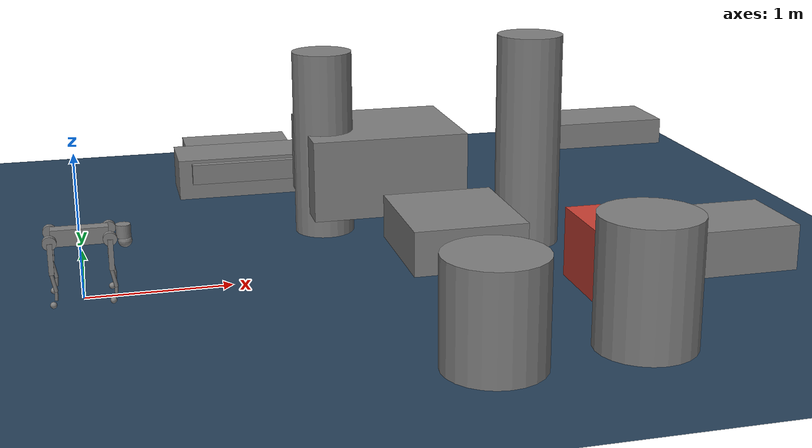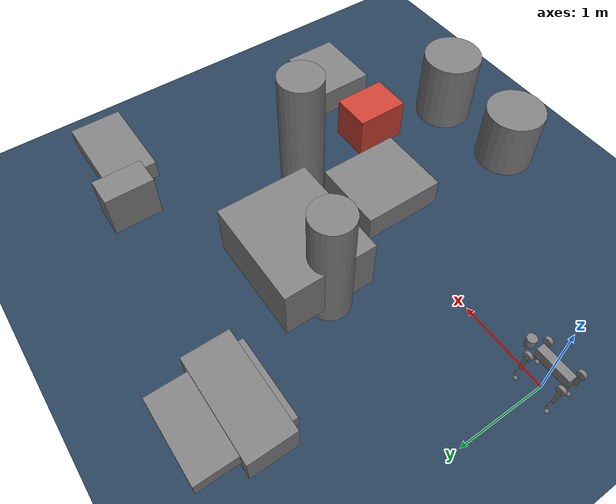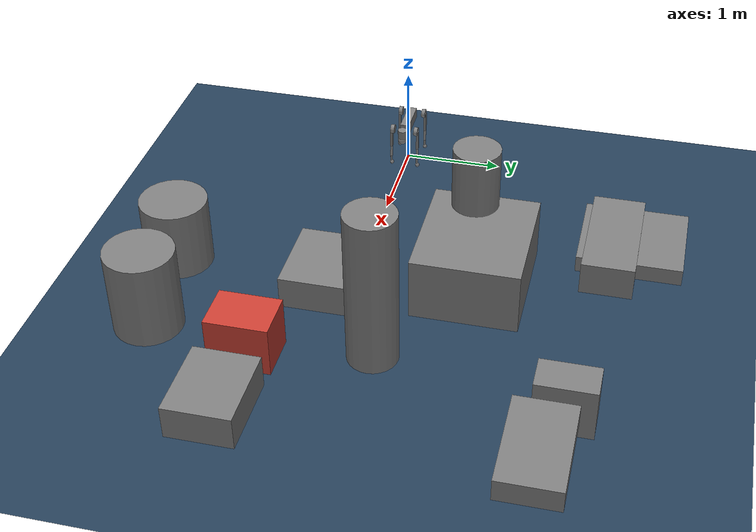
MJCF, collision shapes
<?xml version="1.0" ?>
<mujoco model="go2 rand_04">
  <include file="go2.xml"/>
  <visual>
    <headlight diffuse="0.6 0.6 0.6" ambient="0.3 0.3 0.3" specular="0 0 0"/>
    <rgba haze="0.15 0.25 0.35 1"/>
    <global azimuth="-130" elevation="-20"/>
  </visual>
  <asset>
    <texture type="skybox" builtin="gradient" rgb1="0.3 0.5 0.7" rgb2="0 0 0" width="512" height="3072"/>
    <texture type="2d" name="groundplane" builtin="checker" mark="edge" rgb1="0.2 0.3 0.4" rgb2="0.1 0.2 0.3" markrgb="0.8 0.8 0.8" width="300" height="300"/>
    <material name="groundplane" texture="groundplane" texuniform="true" texrepeat="5 5" reflectance="0.2"/>
  </asset>
  <worldbody>
    <light pos="0 0 1.5" dir="0 0 -1" directional="true"/>
    <geom name="floor" size="0 0 0.05" type="plane" material="groundplane"/>
    <geom type="box" pos="2.56091 -0.0950916 0.298008" size="0.404554 0.453437 0.158891"/>
    <geom type="box" pos="3.87892 2.23444 0.413737" size="0.162419 0.270335 0.253478"/>
    <geom type="box" pos="1.37504 2.57128 0.232636" size="0.453042 0.506664 0.0825749"/>
    <geom type="box" pos="1.39106 2.38373 0.176066" size="0.577222 0.256354 0.165973"/>
    <geom type="box" pos="4.52958 2.08783 0.422736" size="0.478285 0.282055 0.10676"/>
    <geom type="box" pos="2.29464 1.17113 0.495349" size="0.592824 0.506377 0.304642"/>
    <geom type="box" pos="4.37651 -0.677117 0.272972" size="0.390769 0.313181 0.162049"/>
    <geom type="cylinder" pos="3.3184 -1.71266 0.425005" size="0.331706 0.425005 0.425005"/>
    <geom type="cylinder" pos="1.84927 1.07607 0.704326" size="0.227057 0.704326 0.704326"/>
    <geom type="cylinder" pos="2.32361 -1.78718 0.35596" size="0.332554 0.35596 0.35596"/>
    <geom type="cylinder" pos="3.28632 0.429891 0.791231" size="0.242235 0.791231 0.791231"/>
    <geom type="box" pos="3.51165 -0.691118 0.25" size="0.227836 0.299976 0.25" rgba="0.8 0.25 0.2 1"/>
  </worldbody>
</mujoco>

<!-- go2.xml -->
<mujoco model="go2">
  <compiler angle="radian" meshdir="assets" autolimits="true" />

  <option cone="elliptic" impratio="100" />

  <default>
    <default class="go2">
      <geom friction="0.4" margin="0.001" condim="1"/>
      <joint axis="0 1 0" damping="0.1" armature="0.01" frictionloss="0.2"/>
      <motor ctrlrange="-23.7 23.7"/>
      <default class="abduction">
        <joint axis="1 0 0" range="-1.0472 1.0472"/>
      </default>
      <default class="hip">
        <default class="front_hip">
          <joint range="-1.5708 3.4907"/>
        </default>
        <default class="back_hip">
          <joint range="-0.5236 4.5379"/>
        </default>
      </default>
      <default class="knee">
        <joint range="-2.7227 -0.83776"/>
        <motor ctrlrange="-45.43 45.43"/>
      </default>
      <default class="visual">
        <geom type="mesh" contype="0" conaffinity="0" group="2"/>
      </default>
      <default class="collision">
        <geom group="3"/>
        <default class="foot">
          <geom size="0.022" pos="-0.002 0 -0.213" priority="1" condim="6"
            friction="0.4 0.02 0.01"/>
        </default>
      </default>
    </default>
  </default>

  <asset>
    <material name="metal" rgba=".9 .95 .95 1" />
    <material name="black" rgba="0 0 0 1" />
    <material name="white" rgba="1 1 1 1" />
    <material name="gray" rgba="0.671705 0.692426 0.774270 1" />
    <material name="transparent" rgba="1 1 1 0.01" />

    <mesh file="base_0.obj" />
    <mesh file="base_1.obj" />
    <mesh file="base_2.obj" />
    <mesh file="base_3.obj" />
    <mesh file="base_4.obj" />
    <mesh file="hip_0.obj" />
    <mesh file="hip_1.obj" />
    <mesh file="thigh_0.obj" />
    <mesh file="thigh_1.obj" />
    <mesh file="thigh_mirror_0.obj" />
    <mesh file="thigh_mirror_1.obj" />
    <mesh file="calf_0.obj" />
    <mesh file="calf_1.obj" />
    <mesh file="calf_mirror_0.obj" />
    <mesh file="calf_mirror_1.obj" />
    <mesh file="foot.obj" />
  </asset>

  <worldbody>
    <body name="base_link" pos="0 0 0.445" childclass="go2">
      <inertial pos="0.021112 0 -0.005366" quat="-0.000543471 0.713435 -0.00173769 0.700719"
        mass="6.921"
        diaginertia="0.107027 0.0980771 0.0244531" />
      <freejoint />
      <geom mesh="base_0" material="black" class="visual" />
      <geom mesh="base_1" material="black" class="visual" />
      <geom mesh="base_2" material="black" class="visual" />
      <geom mesh="base_3" material="white" class="visual" />
      <geom mesh="base_4" material="gray" class="visual" />
      <geom size="0.1881 0.04675 0.057" type="box" class="collision" />
      <geom size="0.05 0.045" pos="0.285 0 0.01" type="cylinder" class="collision" />
      <geom size="0.047" pos="0.293 0 -0.06" class="collision" />
      <site name="imu" pos="-0.02557 0 0.04232" />
      <body name="FL_hip" pos="0.1934 0.0465 0">
        <inertial pos="-0.0054 0.00194 -0.000105" quat="0.497014 0.499245 0.505462 0.498237"
          mass="0.678"
          diaginertia="0.00088403 0.000596003 0.000479967" />
        <joint name="FL_hip_joint" class="abduction" />
        <geom mesh="hip_0" material="metal" class="visual" />
        <geom mesh="hip_1" material="gray" class="visual" />
        <geom size="0.046 0.02" pos="0 0.08 0" quat="1 1 0 0" type="cylinder" class="collision" />
        <body name="FL_thigh" pos="0 0.0955 0">
          <inertial pos="-0.00374 -0.0223 -0.0327" quat="0.829533 0.0847635 -0.0200632 0.551623"
            mass="1.152"
            diaginertia="0.00594973 0.00584149 0.000878787" />
          <joint name="FL_thigh_joint" class="front_hip" />
          <geom mesh="thigh_0" material="metal" class="visual" />
          <geom mesh="thigh_1" material="gray" class="visual" />
          <geom size="0.1065 0.01225 0.017" pos="0 0 -0.1065" quat="0.707107 0 0.707107 0"
            type="box" class="collision" />
          <body name="FL_calf" pos="0 0 -0.213">
            <inertial pos="0.00629595 -0.000622121 -0.141417"
              quat="0.710672 0.00154099 -0.00450087 0.703508"
              mass="0.241352" diaginertia="0.0014901 0.00146356 5.31397e-05" />
            <joint name="FL_calf_joint" class="knee" />
            <geom mesh="calf_0" material="gray" class="visual" />
            <geom mesh="calf_1" material="black" class="visual" />
            <geom size="0.012 0.06" pos="0.008 0 -0.06" quat="0.994493 0 -0.104807 0"
              type="cylinder" class="collision" />
            <geom size="0.011 0.0325" pos="0.02 0 -0.148" quat="0.999688 0 0.0249974 0"
              type="cylinder" class="collision" />
            <geom pos="0 0 -0.213" mesh="foot" class="visual" material="black" />
            <geom name="FL" class="foot" />
            <site name="FL_touch" pos="0 0 -0.213" size="0.027" material="transparent"/>
            <body name="FL_foot" pos="0 0 -0.213"/>
          </body>
        </body>
      </body>
      <body name="FR_hip" pos="0.1934 -0.0465 0">
        <inertial pos="-0.0054 -0.00194 -0.000105" quat="0.498237 0.505462 0.499245 0.497014"
          mass="0.678"
          diaginertia="0.00088403 0.000596003 0.000479967" />
        <joint name="FR_hip_joint" class="abduction" />
        <geom mesh="hip_0" material="metal" class="visual" quat="4.63268e-05 1 0 0" />
        <geom mesh="hip_1" material="gray" class="visual" quat="4.63268e-05 1 0 0" />
        <geom size="0.046 0.02" pos="0 -0.08 0" quat="0.707107 0.707107 0 0" type="cylinder"
          class="collision" />
        <body name="FR_thigh" pos="0 -0.0955 0">
          <inertial pos="-0.00374 0.0223 -0.0327" quat="0.551623 -0.0200632 0.0847635 0.829533"
            mass="1.152"
            diaginertia="0.00594973 0.00584149 0.000878787" />
          <joint name="FR_thigh_joint" class="front_hip" />
          <geom mesh="thigh_mirror_0" material="metal" class="visual" />
          <geom mesh="thigh_mirror_1" material="gray" class="visual" />
          <geom size="0.1065 0.01225 0.017" pos="0 0 -0.1065" quat="0.707107 0 0.707107 0"
            type="box" class="collision" />
          <body name="FR_calf" pos="0 0 -0.213">
            <inertial pos="0.00629595 0.000622121 -0.141417"
              quat="0.703508 -0.00450087 0.00154099 0.710672"
              mass="0.241352" diaginertia="0.0014901 0.00146356 5.31397e-05" />
            <joint name="FR_calf_joint" class="knee" />
            <geom mesh="calf_mirror_0" material="gray" class="visual" />
            <geom mesh="calf_mirror_1" material="black" class="visual" />
            <geom size="0.013 0.06" pos="0.01 0 -0.06" quat="0.995004 0 -0.0998334 0"
              type="cylinder" class="collision" />
            <geom size="0.011 0.0325" pos="0.02 0 -0.148" quat="0.999688 0 0.0249974 0"
              type="cylinder" class="collision" />
            <geom pos="0 0 -0.213" mesh="foot" class="visual" material="black" />
            <geom name="FR" class="foot" />
            <site name="FR_touch" pos="0 0 -0.213" size="0.027" material="transparent"/>
            <body name="FR_foot" pos="0 0 -0.213"/>
          </body>
        </body>
      </body>
      <body name="RL_hip" pos="-0.1934 0.0465 0">
        <inertial pos="0.0054 0.00194 -0.000105" quat="0.505462 0.498237 0.497014 0.499245"
          mass="0.678"
          diaginertia="0.00088403 0.000596003 0.000479967" />
        <joint name="RL_hip_joint" class="abduction" />
        <geom mesh="hip_0" material="metal" class="visual" quat="4.63268e-05 0 1 0" />
        <geom mesh="hip_1" material="gray" class="visual" quat="4.63268e-05 0 1 0" />
        <geom size="0.046 0.02" pos="0 0.08 0" quat="0.707107 0.707107 0 0" type="cylinder"
          class="collision" />
        <body name="RL_thigh" pos="0 0.0955 0">
          <inertial pos="-0.00374 -0.0223 -0.0327" quat="0.829533 0.0847635 -0.0200632 0.551623"
            mass="1.152"
            diaginertia="0.00594973 0.00584149 0.000878787" />
          <joint name="RL_thigh_joint" class="back_hip" />
          <geom mesh="thigh_0" material="metal" class="visual" />
          <geom mesh="thigh_1" material="gray" class="visual" />
          <geom size="0.1065 0.01225 0.017" pos="0 0 -0.1065" quat="0.707107 0 0.707107 0"
            type="box" class="collision" />
          <body name="RL_calf" pos="0 0 -0.213">
            <inertial pos="0.00629595 -0.000622121 -0.141417"
              quat="0.710672 0.00154099 -0.00450087 0.703508"
              mass="0.241352" diaginertia="0.0014901 0.00146356 5.31397e-05" />
            <joint name="RL_calf_joint" class="knee" />
            <geom mesh="calf_0" material="gray" class="visual" />
            <geom mesh="calf_1" material="black" class="visual" />
            <geom size="0.013 0.06" pos="0.01 0 -0.06" quat="0.995004 0 -0.0998334 0"
              type="cylinder" class="collision" />
            <geom size="0.011 0.0325" pos="0.02 0 -0.148" quat="0.999688 0 0.0249974 0"
              type="cylinder" class="collision" />
            <geom pos="0 0 -0.213" mesh="foot" class="visual" material="black" />
            <geom name="RL" class="foot" />
            <site name="RL_touch" pos="0 0 -0.213" size="0.027" material="transparent"/>
            <body name="RL_foot" pos="0 0 -0.213" />
          </body>
        </body>
      </body>
      <body name="RR_hip" pos="-0.1934 -0.0465 0">
        <inertial pos="0.0054 -0.00194 -0.000105" quat="0.499245 0.497014 0.498237 0.505462"
          mass="0.678"
          diaginertia="0.00088403 0.000596003 0.000479967" />
        <joint name="RR_hip_joint" class="abduction" />
        <geom mesh="hip_0" material="metal" class="visual"
          quat="2.14617e-09 4.63268e-05 4.63268e-05 -1" />
        <geom mesh="hip_1" material="gray" class="visual"
          quat="2.14617e-09 4.63268e-05 4.63268e-05 -1" />
        <geom size="0.046 0.02" pos="0 -0.08 0" quat="0.707107 0.707107 0 0" type="cylinder"
          class="collision" />
        <body name="RR_thigh" pos="0 -0.0955 0">
          <inertial pos="-0.00374 0.0223 -0.0327" quat="0.551623 -0.0200632 0.0847635 0.829533"
            mass="1.152"
            diaginertia="0.00594973 0.00584149 0.000878787" />
          <joint name="RR_thigh_joint" class="back_hip" />
          <geom mesh="thigh_mirror_0" material="metal" class="visual" />
          <geom mesh="thigh_mirror_1" material="gray" class="visual" />
          <geom size="0.1065 0.01225 0.017" pos="0 0 -0.1065" quat="0.707107 0 0.707107 0"
            type="box" class="collision" />
          <body name="RR_calf" pos="0 0 -0.213">
            <inertial pos="0.00629595 0.000622121 -0.141417"
              quat="0.703508 -0.00450087 0.00154099 0.710672"
              mass="0.241352" diaginertia="0.0014901 0.00146356 5.31397e-05" />
            <joint name="RR_calf_joint" class="knee" />
            <geom mesh="calf_mirror_0" material="gray" class="visual" />
            <geom mesh="calf_mirror_1" material="black" class="visual" />
            <geom size="0.013 0.06" pos="0.01 0 -0.06" quat="0.995004 0 -0.0998334 0"
              type="cylinder" class="collision" />
            <geom size="0.011 0.0325" pos="0.02 0 -0.148" quat="0.999688 0 0.0249974 0"
              type="cylinder" class="collision" />
            <geom pos="0 0 -0.213" mesh="foot" class="visual" material="black" />
            <geom name="RR" class="foot" />
            <site name="RR_touch" pos="0 0 -0.213" size="0.027" material="transparent"/>
            <body name="RR_foot" pos="0 0 -0.213"/>
          </body>
        </body>
      </body>
    </body>
  </worldbody>

  <actuator>
    <motor class="abduction" name="FR_hip" joint="FR_hip_joint" />
    <motor class="hip" name="FR_thigh" joint="FR_thigh_joint" />
    <motor class="knee" name="FR_calf" joint="FR_calf_joint" />
    <motor class="abduction" name="FL_hip" joint="FL_hip_joint" />
    <motor class="hip" name="FL_thigh" joint="FL_thigh_joint" />
    <motor class="knee" name="FL_calf" joint="FL_calf_joint" />
    <motor class="abduction" name="RR_hip" joint="RR_hip_joint" />
    <motor class="hip" name="RR_thigh" joint="RR_thigh_joint" />
    <motor class="knee" name="RR_calf" joint="RR_calf_joint" />
    <motor class="abduction" name="RL_hip" joint="RL_hip_joint" />
    <motor class="hip" name="RL_thigh" joint="RL_thigh_joint" />
    <motor class="knee" name="RL_calf" joint="RL_calf_joint" />
  </actuator>

  <sensor>
    <jointpos name="FR_hip_pos" joint="FR_hip_joint" />
    <jointpos name="FR_thigh_pos" joint="FR_thigh_joint" />
    <jointpos name="FR_calf_pos" joint="FR_calf_joint" />
    <jointpos name="FL_hip_pos" joint="FL_hip_joint" />
    <jointpos name="FL_thigh_pos" joint="FL_thigh_joint" />
    <jointpos name="FL_calf_pos" joint="FL_calf_joint" />
    <jointpos name="RR_hip_pos" joint="RR_hip_joint" />
    <jointpos name="RR_thigh_pos" joint="RR_thigh_joint" />
    <jointpos name="RR_calf_pos" joint="RR_calf_joint" />
    <jointpos name="RL_hip_pos" joint="RL_hip_joint" />
    <jointpos name="RL_thigh_pos" joint="RL_thigh_joint" />
    <jointpos name="RL_calf_pos" joint="RL_calf_joint" />

    <jointvel name="FR_hip_vel" joint="FR_hip_joint" />
    <jointvel name="FR_thigh_vel" joint="FR_thigh_joint" />
    <jointvel name="FR_calf_vel" joint="FR_calf_joint" />
    <jointvel name="FL_hip_vel" joint="FL_hip_joint" />
    <jointvel name="FL_thigh_vel" joint="FL_thigh_joint" />
    <jointvel name="FL_calf_vel" joint="FL_calf_joint" />
    <jointvel name="RR_hip_vel" joint="RR_hip_joint" />
    <jointvel name="RR_thigh_vel" joint="RR_thigh_joint" />
    <jointvel name="RR_calf_vel" joint="RR_calf_joint" />
    <jointvel name="RL_hip_vel" joint="RL_hip_joint" />
    <jointvel name="RL_thigh_vel" joint="RL_thigh_joint" />
    <jointvel name="RL_calf_vel" joint="RL_calf_joint" />

    <jointactuatorfrc name="FR_hip_torque" joint="FR_hip_joint" noise="0.01" />
    <jointactuatorfrc name="FR_thigh_torque" joint="FR_thigh_joint" noise="0.01" />
    <jointactuatorfrc name="FR_calf_torque" joint="FR_calf_joint" noise="0.01" />
    <jointactuatorfrc name="FL_hip_torque" joint="FL_hip_joint" noise="0.01" />
    <jointactuatorfrc name="FL_thigh_torque" joint="FL_thigh_joint" noise="0.01" />
    <jointactuatorfrc name="FL_calf_torque" joint="FL_calf_joint" noise="0.01" />
    <jointactuatorfrc name="RR_hip_torque" joint="RR_hip_joint" noise="0.01" />
    <jointactuatorfrc name="RR_thigh_torque" joint="RR_thigh_joint" noise="0.01" />
    <jointactuatorfrc name="RR_calf_torque" joint="RR_calf_joint" noise="0.01" />
    <jointactuatorfrc name="RL_hip_torque" joint="RL_hip_joint" noise="0.01" />
    <jointactuatorfrc name="RL_thigh_torque" joint="RL_thigh_joint" noise="0.01" />
    <jointactuatorfrc name="RL_calf_torque" joint="RL_calf_joint" noise="0.01" />

    <framequat name="imu_quat" objtype="site" objname="imu" />
    <gyro name="imu_gyro" site="imu" />
    <accelerometer name="imu_acc" site="imu" />

    <framepos name="frame_pos" objtype="site" objname="imu" />
    <framelinvel name="frame_vel" objtype="site" objname="imu" />

    <touch name="FR_touch" site="FR_touch" />
    <touch name="FL_touch" site="FL_touch" />
    <touch name="RR_touch" site="RR_touch" />
    <touch name="RL_touch" site="RL_touch" />
  </sensor>

  <keyframe>
    <key name="home" qpos="0 0 0.445 1 0 0 0 0 0.8 -1.5 0 0.8 -1.5 0 0.8 -1.5 0 0.8 -1.5"
         ctrl="0 0 0 0 0 0 0 0 0 0 0 0" />
  </keyframe>
</mujoco>
